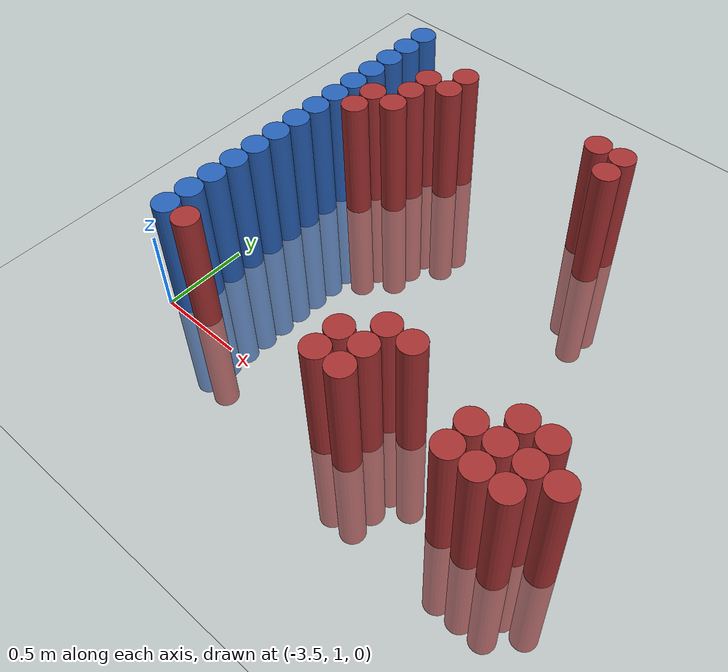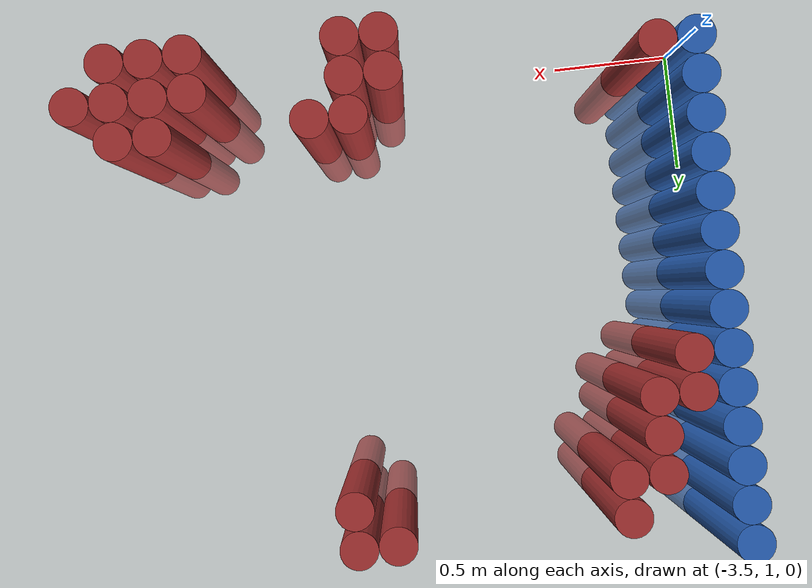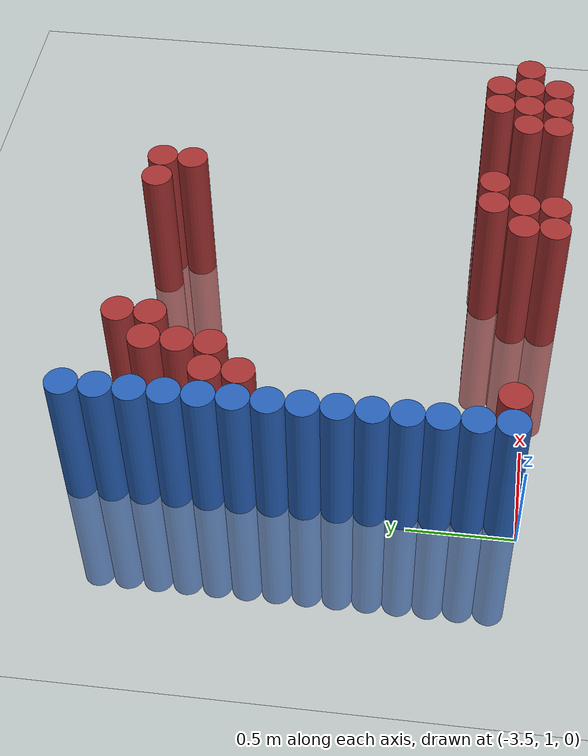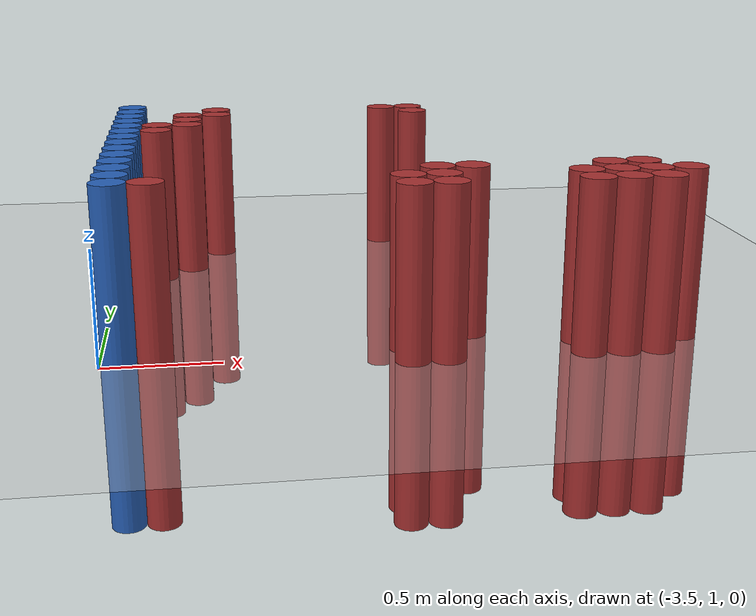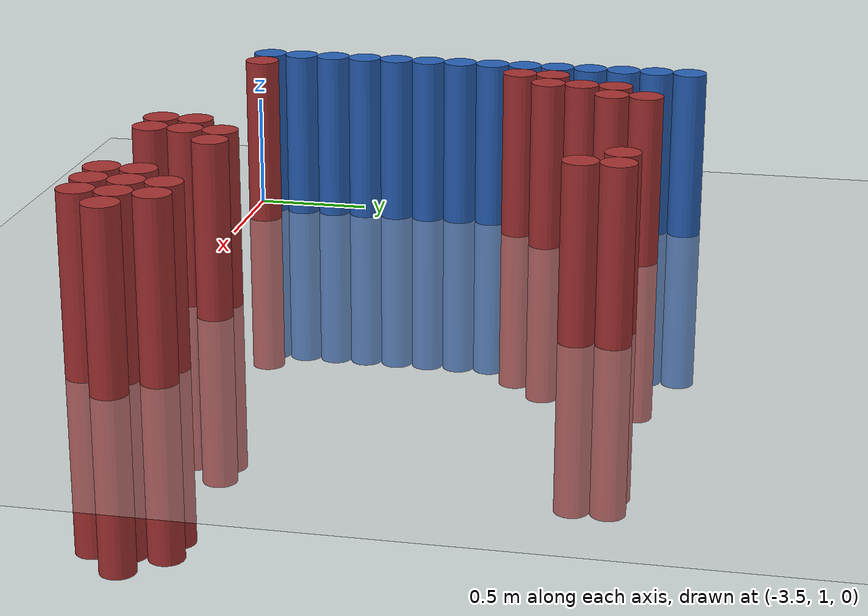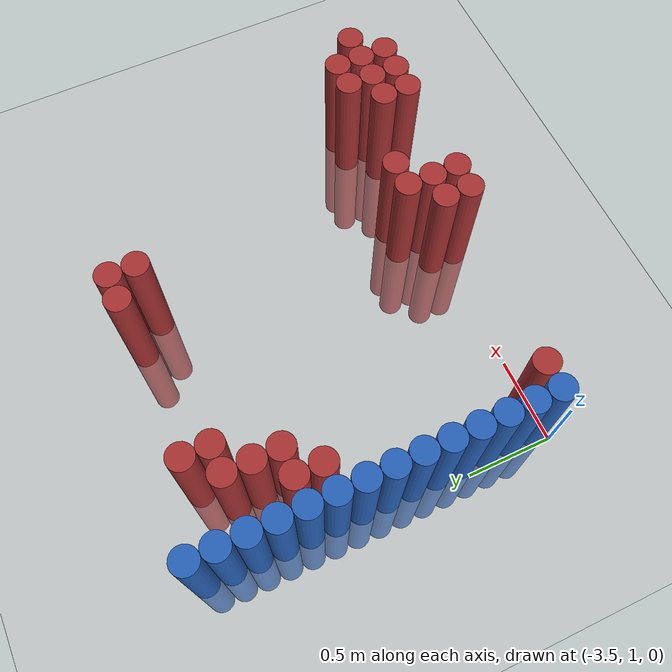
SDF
<sdf version="1.6">
 <world name="default">
  <model name="ground_plane">
   <static>1</static>
   <link name="link">
    <collision name="collision">
     <geometry><plane><normal>0 0 1</normal><size>100 100</size></plane></geometry>
     <surface><friction><ode><mu>100</mu><mu2>50</mu2></ode></friction></surface>
    </collision>
    <visual name="visual">
     <cast_shadows>0</cast_shadows>
     <geometry><plane><normal>0 0 1</normal><size>100 100</size></plane></geometry>
     <material>
      <script><uri>file://media/materials/scripts/gazebo.material</uri><name>Gazebo/Grey</name></script>
     </material>
    </visual>
   </link>
  </model>
  <model name="unit_cylinder_129">
   <static>1</static>
   <pose>-3.425000 1.075000 0.000000 0.000000 0.000000 0.000000</pose>
   <link name="link">
    <inertial>
     <mass>1</mass>
     <inertia><ixx>0.145833</ixx><ixy>0</ixy><ixz>0</ixz><iyy>0.145833</iyy><iyz>0</iyz><izz>0.125</izz></inertia>
    </inertial>
    <collision name="collision">
     <geometry><cylinder><radius>0.075000</radius><length>1.5</length></cylinder></geometry>
    </collision>
    <visual name="visual">
     <geometry><cylinder><radius>0.075000</radius><length>1.5</length></cylinder></geometry>
     <material>
      <ambient>0.152000 0.379000 0.720000 1</ambient>
      <diffuse>0.152000 0.379000 0.720000 1</diffuse>
     </material>
     <material>
      <script><name>Gazebo/Grey</name><uri>file://media/materials/scripts/gazebo.material</uri></script>
     </material>
    </visual>
   </link>
  </model>
  <model name="unit_cylinder_131">
   <static>1</static>
   <pose>-3.425000 1.225000 0.000000 0.000000 0.000000 0.000000</pose>
   <link name="link">
    <inertial>
     <mass>1</mass>
     <inertia><ixx>0.145833</ixx><ixy>0</ixy><ixz>0</ixz><iyy>0.145833</iyy><iyz>0</iyz><izz>0.125</izz></inertia>
    </inertial>
    <collision name="collision">
     <geometry><cylinder><radius>0.075000</radius><length>1.5</length></cylinder></geometry>
    </collision>
    <visual name="visual">
     <geometry><cylinder><radius>0.075000</radius><length>1.5</length></cylinder></geometry>
     <material>
      <ambient>0.152000 0.379000 0.720000 1</ambient>
      <diffuse>0.152000 0.379000 0.720000 1</diffuse>
     </material>
     <material>
      <script><name>Gazebo/Grey</name><uri>file://media/materials/scripts/gazebo.material</uri></script>
     </material>
    </visual>
   </link>
  </model>
  <model name="unit_cylinder_133">
   <static>1</static>
   <pose>-3.425000 1.375000 0.000000 0.000000 0.000000 0.000000</pose>
   <link name="link">
    <inertial>
     <mass>1</mass>
     <inertia><ixx>0.145833</ixx><ixy>0</ixy><ixz>0</ixz><iyy>0.145833</iyy><iyz>0</iyz><izz>0.125</izz></inertia>
    </inertial>
    <collision name="collision">
     <geometry><cylinder><radius>0.075000</radius><length>1.5</length></cylinder></geometry>
    </collision>
    <visual name="visual">
     <geometry><cylinder><radius>0.075000</radius><length>1.5</length></cylinder></geometry>
     <material>
      <ambient>0.152000 0.379000 0.720000 1</ambient>
      <diffuse>0.152000 0.379000 0.720000 1</diffuse>
     </material>
     <material>
      <script><name>Gazebo/Grey</name><uri>file://media/materials/scripts/gazebo.material</uri></script>
     </material>
    </visual>
   </link>
  </model>
  <model name="unit_cylinder_135">
   <static>1</static>
   <pose>-3.425000 1.525000 0.000000 0.000000 0.000000 0.000000</pose>
   <link name="link">
    <inertial>
     <mass>1</mass>
     <inertia><ixx>0.145833</ixx><ixy>0</ixy><ixz>0</ixz><iyy>0.145833</iyy><iyz>0</iyz><izz>0.125</izz></inertia>
    </inertial>
    <collision name="collision">
     <geometry><cylinder><radius>0.075000</radius><length>1.5</length></cylinder></geometry>
    </collision>
    <visual name="visual">
     <geometry><cylinder><radius>0.075000</radius><length>1.5</length></cylinder></geometry>
     <material>
      <ambient>0.152000 0.379000 0.720000 1</ambient>
      <diffuse>0.152000 0.379000 0.720000 1</diffuse>
     </material>
     <material>
      <script><name>Gazebo/Grey</name><uri>file://media/materials/scripts/gazebo.material</uri></script>
     </material>
    </visual>
   </link>
  </model>
  <model name="unit_cylinder_137">
   <static>1</static>
   <pose>-3.425000 1.675000 0.000000 0.000000 0.000000 0.000000</pose>
   <link name="link">
    <inertial>
     <mass>1</mass>
     <inertia><ixx>0.145833</ixx><ixy>0</ixy><ixz>0</ixz><iyy>0.145833</iyy><iyz>0</iyz><izz>0.125</izz></inertia>
    </inertial>
    <collision name="collision">
     <geometry><cylinder><radius>0.075000</radius><length>1.5</length></cylinder></geometry>
    </collision>
    <visual name="visual">
     <geometry><cylinder><radius>0.075000</radius><length>1.5</length></cylinder></geometry>
     <material>
      <ambient>0.152000 0.379000 0.720000 1</ambient>
      <diffuse>0.152000 0.379000 0.720000 1</diffuse>
     </material>
     <material>
      <script><name>Gazebo/Grey</name><uri>file://media/materials/scripts/gazebo.material</uri></script>
     </material>
    </visual>
   </link>
  </model>
  <model name="unit_cylinder_139">
   <static>1</static>
   <pose>-3.425000 1.825000 0.000000 0.000000 0.000000 0.000000</pose>
   <link name="link">
    <inertial>
     <mass>1</mass>
     <inertia><ixx>0.145833</ixx><ixy>0</ixy><ixz>0</ixz><iyy>0.145833</iyy><iyz>0</iyz><izz>0.125</izz></inertia>
    </inertial>
    <collision name="collision">
     <geometry><cylinder><radius>0.075000</radius><length>1.5</length></cylinder></geometry>
    </collision>
    <visual name="visual">
     <geometry><cylinder><radius>0.075000</radius><length>1.5</length></cylinder></geometry>
     <material>
      <ambient>0.152000 0.379000 0.720000 1</ambient>
      <diffuse>0.152000 0.379000 0.720000 1</diffuse>
     </material>
     <material>
      <script><name>Gazebo/Grey</name><uri>file://media/materials/scripts/gazebo.material</uri></script>
     </material>
    </visual>
   </link>
  </model>
  <model name="unit_cylinder_141">
   <static>1</static>
   <pose>-3.425000 1.975000 0.000000 0.000000 0.000000 0.000000</pose>
   <link name="link">
    <inertial>
     <mass>1</mass>
     <inertia><ixx>0.145833</ixx><ixy>0</ixy><ixz>0</ixz><iyy>0.145833</iyy><iyz>0</iyz><izz>0.125</izz></inertia>
    </inertial>
    <collision name="collision">
     <geometry><cylinder><radius>0.075000</radius><length>1.5</length></cylinder></geometry>
    </collision>
    <visual name="visual">
     <geometry><cylinder><radius>0.075000</radius><length>1.5</length></cylinder></geometry>
     <material>
      <ambient>0.152000 0.379000 0.720000 1</ambient>
      <diffuse>0.152000 0.379000 0.720000 1</diffuse>
     </material>
     <material>
      <script><name>Gazebo/Grey</name><uri>file://media/materials/scripts/gazebo.material</uri></script>
     </material>
    </visual>
   </link>
  </model>
  <model name="unit_cylinder_143">
   <static>1</static>
   <pose>-3.425000 2.125000 0.000000 0.000000 0.000000 0.000000</pose>
   <link name="link">
    <inertial>
     <mass>1</mass>
     <inertia><ixx>0.145833</ixx><ixy>0</ixy><ixz>0</ixz><iyy>0.145833</iyy><iyz>0</iyz><izz>0.125</izz></inertia>
    </inertial>
    <collision name="collision">
     <geometry><cylinder><radius>0.075000</radius><length>1.5</length></cylinder></geometry>
    </collision>
    <visual name="visual">
     <geometry><cylinder><radius>0.075000</radius><length>1.5</length></cylinder></geometry>
     <material>
      <ambient>0.152000 0.379000 0.720000 1</ambient>
      <diffuse>0.152000 0.379000 0.720000 1</diffuse>
     </material>
     <material>
      <script><name>Gazebo/Grey</name><uri>file://media/materials/scripts/gazebo.material</uri></script>
     </material>
    </visual>
   </link>
  </model>
  <model name="unit_cylinder_145">
   <static>1</static>
   <pose>-3.425000 2.275000 0.000000 0.000000 0.000000 0.000000</pose>
   <link name="link">
    <inertial>
     <mass>1</mass>
     <inertia><ixx>0.145833</ixx><ixy>0</ixy><ixz>0</ixz><iyy>0.145833</iyy><iyz>0</iyz><izz>0.125</izz></inertia>
    </inertial>
    <collision name="collision">
     <geometry><cylinder><radius>0.075000</radius><length>1.5</length></cylinder></geometry>
    </collision>
    <visual name="visual">
     <geometry><cylinder><radius>0.075000</radius><length>1.5</length></cylinder></geometry>
     <material>
      <ambient>0.152000 0.379000 0.720000 1</ambient>
      <diffuse>0.152000 0.379000 0.720000 1</diffuse>
     </material>
     <material>
      <script><name>Gazebo/Grey</name><uri>file://media/materials/scripts/gazebo.material</uri></script>
     </material>
    </visual>
   </link>
  </model>
  <model name="unit_cylinder_147">
   <static>1</static>
   <pose>-3.425000 2.425000 0.000000 0.000000 0.000000 0.000000</pose>
   <link name="link">
    <inertial>
     <mass>1</mass>
     <inertia><ixx>0.145833</ixx><ixy>0</ixy><ixz>0</ixz><iyy>0.145833</iyy><iyz>0</iyz><izz>0.125</izz></inertia>
    </inertial>
    <collision name="collision">
     <geometry><cylinder><radius>0.075000</radius><length>1.5</length></cylinder></geometry>
    </collision>
    <visual name="visual">
     <geometry><cylinder><radius>0.075000</radius><length>1.5</length></cylinder></geometry>
     <material>
      <ambient>0.152000 0.379000 0.720000 1</ambient>
      <diffuse>0.152000 0.379000 0.720000 1</diffuse>
     </material>
     <material>
      <script><name>Gazebo/Grey</name><uri>file://media/materials/scripts/gazebo.material</uri></script>
     </material>
    </visual>
   </link>
  </model>
  <model name="unit_cylinder_149">
   <static>1</static>
   <pose>-3.425000 2.575000 0.000000 0.000000 0.000000 0.000000</pose>
   <link name="link">
    <inertial>
     <mass>1</mass>
     <inertia><ixx>0.145833</ixx><ixy>0</ixy><ixz>0</ixz><iyy>0.145833</iyy><iyz>0</iyz><izz>0.125</izz></inertia>
    </inertial>
    <collision name="collision">
     <geometry><cylinder><radius>0.075000</radius><length>1.5</length></cylinder></geometry>
    </collision>
    <visual name="visual">
     <geometry><cylinder><radius>0.075000</radius><length>1.5</length></cylinder></geometry>
     <material>
      <ambient>0.152000 0.379000 0.720000 1</ambient>
      <diffuse>0.152000 0.379000 0.720000 1</diffuse>
     </material>
     <material>
      <script><name>Gazebo/Grey</name><uri>file://media/materials/scripts/gazebo.material</uri></script>
     </material>
    </visual>
   </link>
  </model>
  <model name="unit_cylinder_151">
   <static>1</static>
   <pose>-3.425000 2.725000 0.000000 0.000000 0.000000 0.000000</pose>
   <link name="link">
    <inertial>
     <mass>1</mass>
     <inertia><ixx>0.145833</ixx><ixy>0</ixy><ixz>0</ixz><iyy>0.145833</iyy><iyz>0</iyz><izz>0.125</izz></inertia>
    </inertial>
    <collision name="collision">
     <geometry><cylinder><radius>0.075000</radius><length>1.5</length></cylinder></geometry>
    </collision>
    <visual name="visual">
     <geometry><cylinder><radius>0.075000</radius><length>1.5</length></cylinder></geometry>
     <material>
      <ambient>0.152000 0.379000 0.720000 1</ambient>
      <diffuse>0.152000 0.379000 0.720000 1</diffuse>
     </material>
     <material>
      <script><name>Gazebo/Grey</name><uri>file://media/materials/scripts/gazebo.material</uri></script>
     </material>
    </visual>
   </link>
  </model>
  <model name="unit_cylinder_153">
   <static>1</static>
   <pose>-3.425000 2.875000 0.000000 0.000000 0.000000 0.000000</pose>
   <link name="link">
    <inertial>
     <mass>1</mass>
     <inertia><ixx>0.145833</ixx><ixy>0</ixy><ixz>0</ixz><iyy>0.145833</iyy><iyz>0</iyz><izz>0.125</izz></inertia>
    </inertial>
    <collision name="collision">
     <geometry><cylinder><radius>0.075000</radius><length>1.5</length></cylinder></geometry>
    </collision>
    <visual name="visual">
     <geometry><cylinder><radius>0.075000</radius><length>1.5</length></cylinder></geometry>
     <material>
      <ambient>0.152000 0.379000 0.720000 1</ambient>
      <diffuse>0.152000 0.379000 0.720000 1</diffuse>
     </material>
     <material>
      <script><name>Gazebo/Grey</name><uri>file://media/materials/scripts/gazebo.material</uri></script>
     </material>
    </visual>
   </link>
  </model>
  <model name="unit_cylinder_155">
   <static>1</static>
   <pose>-3.425000 3.025000 0.000000 0.000000 0.000000 0.000000</pose>
   <link name="link">
    <inertial>
     <mass>1</mass>
     <inertia><ixx>0.145833</ixx><ixy>0</ixy><ixz>0</ixz><iyy>0.145833</iyy><iyz>0</iyz><izz>0.125</izz></inertia>
    </inertial>
    <collision name="collision">
     <geometry><cylinder><radius>0.075000</radius><length>1.5</length></cylinder></geometry>
    </collision>
    <visual name="visual">
     <geometry><cylinder><radius>0.075000</radius><length>1.5</length></cylinder></geometry>
     <material>
      <ambient>0.152000 0.379000 0.720000 1</ambient>
      <diffuse>0.152000 0.379000 0.720000 1</diffuse>
     </material>
     <material>
      <script><name>Gazebo/Grey</name><uri>file://media/materials/scripts/gazebo.material</uri></script>
     </material>
    </visual>
   </link>
  </model>
  <model name="unit_cylinder_228">
   <static>1</static>
   <pose>-3.425000 1.075000 0.000000 0.000000 0.000000 0.000000</pose>
   <link name="link">
    <inertial>
     <mass>1</mass>
     <inertia><ixx>0.145833</ixx><ixy>0</ixy><ixz>0</ixz><iyy>0.145833</iyy><iyz>0</iyz><izz>0.125</izz></inertia>
    </inertial>
    <collision name="collision">
     <geometry><cylinder><radius>0.075000</radius><length>1.5</length></cylinder></geometry>
    </collision>
    <visual name="visual">
     <geometry><cylinder><radius>0.075000</radius><length>1.5</length></cylinder></geometry>
     <material>
      <ambient>0.152000 0.379000 0.720000 1</ambient>
      <diffuse>0.152000 0.379000 0.720000 1</diffuse>
     </material>
     <material>
      <script><name>Gazebo/Grey</name><uri>file://media/materials/scripts/gazebo.material</uri></script>
     </material>
    </visual>
   </link>
  </model>
  <model name="unit_cylinder_229">
   <static>1</static>
   <pose>-3.425000 1.225000 0.000000 0.000000 0.000000 0.000000</pose>
   <link name="link">
    <inertial>
     <mass>1</mass>
     <inertia><ixx>0.145833</ixx><ixy>0</ixy><ixz>0</ixz><iyy>0.145833</iyy><iyz>0</iyz><izz>0.125</izz></inertia>
    </inertial>
    <collision name="collision">
     <geometry><cylinder><radius>0.075000</radius><length>1.5</length></cylinder></geometry>
    </collision>
    <visual name="visual">
     <geometry><cylinder><radius>0.075000</radius><length>1.5</length></cylinder></geometry>
     <material>
      <ambient>0.152000 0.379000 0.720000 1</ambient>
      <diffuse>0.152000 0.379000 0.720000 1</diffuse>
     </material>
     <material>
      <script><name>Gazebo/Grey</name><uri>file://media/materials/scripts/gazebo.material</uri></script>
     </material>
    </visual>
   </link>
  </model>
  <model name="unit_cylinder_230">
   <static>1</static>
   <pose>-3.425000 1.375000 0.000000 0.000000 0.000000 0.000000</pose>
   <link name="link">
    <inertial>
     <mass>1</mass>
     <inertia><ixx>0.145833</ixx><ixy>0</ixy><ixz>0</ixz><iyy>0.145833</iyy><iyz>0</iyz><izz>0.125</izz></inertia>
    </inertial>
    <collision name="collision">
     <geometry><cylinder><radius>0.075000</radius><length>1.5</length></cylinder></geometry>
    </collision>
    <visual name="visual">
     <geometry><cylinder><radius>0.075000</radius><length>1.5</length></cylinder></geometry>
     <material>
      <ambient>0.152000 0.379000 0.720000 1</ambient>
      <diffuse>0.152000 0.379000 0.720000 1</diffuse>
     </material>
     <material>
      <script><name>Gazebo/Grey</name><uri>file://media/materials/scripts/gazebo.material</uri></script>
     </material>
    </visual>
   </link>
  </model>
  <model name="unit_cylinder_231">
   <static>1</static>
   <pose>-3.425000 1.525000 0.000000 0.000000 0.000000 0.000000</pose>
   <link name="link">
    <inertial>
     <mass>1</mass>
     <inertia><ixx>0.145833</ixx><ixy>0</ixy><ixz>0</ixz><iyy>0.145833</iyy><iyz>0</iyz><izz>0.125</izz></inertia>
    </inertial>
    <collision name="collision">
     <geometry><cylinder><radius>0.075000</radius><length>1.5</length></cylinder></geometry>
    </collision>
    <visual name="visual">
     <geometry><cylinder><radius>0.075000</radius><length>1.5</length></cylinder></geometry>
     <material>
      <ambient>0.152000 0.379000 0.720000 1</ambient>
      <diffuse>0.152000 0.379000 0.720000 1</diffuse>
     </material>
     <material>
      <script><name>Gazebo/Grey</name><uri>file://media/materials/scripts/gazebo.material</uri></script>
     </material>
    </visual>
   </link>
  </model>
  <model name="unit_cylinder_232">
   <static>1</static>
   <pose>-3.425000 1.675000 0.000000 0.000000 0.000000 0.000000</pose>
   <link name="link">
    <inertial>
     <mass>1</mass>
     <inertia><ixx>0.145833</ixx><ixy>0</ixy><ixz>0</ixz><iyy>0.145833</iyy><iyz>0</iyz><izz>0.125</izz></inertia>
    </inertial>
    <collision name="collision">
     <geometry><cylinder><radius>0.075000</radius><length>1.5</length></cylinder></geometry>
    </collision>
    <visual name="visual">
     <geometry><cylinder><radius>0.075000</radius><length>1.5</length></cylinder></geometry>
     <material>
      <ambient>0.152000 0.379000 0.720000 1</ambient>
      <diffuse>0.152000 0.379000 0.720000 1</diffuse>
     </material>
     <material>
      <script><name>Gazebo/Grey</name><uri>file://media/materials/scripts/gazebo.material</uri></script>
     </material>
    </visual>
   </link>
  </model>
  <model name="unit_cylinder_233">
   <static>1</static>
   <pose>-3.425000 1.825000 0.000000 0.000000 0.000000 0.000000</pose>
   <link name="link">
    <inertial>
     <mass>1</mass>
     <inertia><ixx>0.145833</ixx><ixy>0</ixy><ixz>0</ixz><iyy>0.145833</iyy><iyz>0</iyz><izz>0.125</izz></inertia>
    </inertial>
    <collision name="collision">
     <geometry><cylinder><radius>0.075000</radius><length>1.5</length></cylinder></geometry>
    </collision>
    <visual name="visual">
     <geometry><cylinder><radius>0.075000</radius><length>1.5</length></cylinder></geometry>
     <material>
      <ambient>0.152000 0.379000 0.720000 1</ambient>
      <diffuse>0.152000 0.379000 0.720000 1</diffuse>
     </material>
     <material>
      <script><name>Gazebo/Grey</name><uri>file://media/materials/scripts/gazebo.material</uri></script>
     </material>
    </visual>
   </link>
  </model>
  <model name="unit_cylinder_234">
   <static>1</static>
   <pose>-3.425000 1.975000 0.000000 0.000000 0.000000 0.000000</pose>
   <link name="link">
    <inertial>
     <mass>1</mass>
     <inertia><ixx>0.145833</ixx><ixy>0</ixy><ixz>0</ixz><iyy>0.145833</iyy><iyz>0</iyz><izz>0.125</izz></inertia>
    </inertial>
    <collision name="collision">
     <geometry><cylinder><radius>0.075000</radius><length>1.5</length></cylinder></geometry>
    </collision>
    <visual name="visual">
     <geometry><cylinder><radius>0.075000</radius><length>1.5</length></cylinder></geometry>
     <material>
      <ambient>0.152000 0.379000 0.720000 1</ambient>
      <diffuse>0.152000 0.379000 0.720000 1</diffuse>
     </material>
     <material>
      <script><name>Gazebo/Grey</name><uri>file://media/materials/scripts/gazebo.material</uri></script>
     </material>
    </visual>
   </link>
  </model>
  <model name="unit_cylinder_235">
   <static>1</static>
   <pose>-3.425000 2.125000 0.000000 0.000000 0.000000 0.000000</pose>
   <link name="link">
    <inertial>
     <mass>1</mass>
     <inertia><ixx>0.145833</ixx><ixy>0</ixy><ixz>0</ixz><iyy>0.145833</iyy><iyz>0</iyz><izz>0.125</izz></inertia>
    </inertial>
    <collision name="collision">
     <geometry><cylinder><radius>0.075000</radius><length>1.5</length></cylinder></geometry>
    </collision>
    <visual name="visual">
     <geometry><cylinder><radius>0.075000</radius><length>1.5</length></cylinder></geometry>
     <material>
      <ambient>0.152000 0.379000 0.720000 1</ambient>
      <diffuse>0.152000 0.379000 0.720000 1</diffuse>
     </material>
     <material>
      <script><name>Gazebo/Grey</name><uri>file://media/materials/scripts/gazebo.material</uri></script>
     </material>
    </visual>
   </link>
  </model>
  <model name="unit_cylinder_236">
   <static>1</static>
   <pose>-3.425000 2.275000 0.000000 0.000000 0.000000 0.000000</pose>
   <link name="link">
    <inertial>
     <mass>1</mass>
     <inertia><ixx>0.145833</ixx><ixy>0</ixy><ixz>0</ixz><iyy>0.145833</iyy><iyz>0</iyz><izz>0.125</izz></inertia>
    </inertial>
    <collision name="collision">
     <geometry><cylinder><radius>0.075000</radius><length>1.5</length></cylinder></geometry>
    </collision>
    <visual name="visual">
     <geometry><cylinder><radius>0.075000</radius><length>1.5</length></cylinder></geometry>
     <material>
      <ambient>0.152000 0.379000 0.720000 1</ambient>
      <diffuse>0.152000 0.379000 0.720000 1</diffuse>
     </material>
     <material>
      <script><name>Gazebo/Grey</name><uri>file://media/materials/scripts/gazebo.material</uri></script>
     </material>
    </visual>
   </link>
  </model>
  <model name="unit_cylinder_237">
   <static>1</static>
   <pose>-3.425000 2.425000 0.000000 0.000000 0.000000 0.000000</pose>
   <link name="link">
    <inertial>
     <mass>1</mass>
     <inertia><ixx>0.145833</ixx><ixy>0</ixy><ixz>0</ixz><iyy>0.145833</iyy><iyz>0</iyz><izz>0.125</izz></inertia>
    </inertial>
    <collision name="collision">
     <geometry><cylinder><radius>0.075000</radius><length>1.5</length></cylinder></geometry>
    </collision>
    <visual name="visual">
     <geometry><cylinder><radius>0.075000</radius><length>1.5</length></cylinder></geometry>
     <material>
      <ambient>0.152000 0.379000 0.720000 1</ambient>
      <diffuse>0.152000 0.379000 0.720000 1</diffuse>
     </material>
     <material>
      <script><name>Gazebo/Grey</name><uri>file://media/materials/scripts/gazebo.material</uri></script>
     </material>
    </visual>
   </link>
  </model>
  <model name="unit_cylinder_238">
   <static>1</static>
   <pose>-3.425000 2.575000 0.000000 0.000000 0.000000 0.000000</pose>
   <link name="link">
    <inertial>
     <mass>1</mass>
     <inertia><ixx>0.145833</ixx><ixy>0</ixy><ixz>0</ixz><iyy>0.145833</iyy><iyz>0</iyz><izz>0.125</izz></inertia>
    </inertial>
    <collision name="collision">
     <geometry><cylinder><radius>0.075000</radius><length>1.5</length></cylinder></geometry>
    </collision>
    <visual name="visual">
     <geometry><cylinder><radius>0.075000</radius><length>1.5</length></cylinder></geometry>
     <material>
      <ambient>0.152000 0.379000 0.720000 1</ambient>
      <diffuse>0.152000 0.379000 0.720000 1</diffuse>
     </material>
     <material>
      <script><name>Gazebo/Grey</name><uri>file://media/materials/scripts/gazebo.material</uri></script>
     </material>
    </visual>
   </link>
  </model>
  <model name="unit_cylinder_239">
   <static>1</static>
   <pose>-3.425000 2.725000 0.000000 0.000000 0.000000 0.000000</pose>
   <link name="link">
    <inertial>
     <mass>1</mass>
     <inertia><ixx>0.145833</ixx><ixy>0</ixy><ixz>0</ixz><iyy>0.145833</iyy><iyz>0</iyz><izz>0.125</izz></inertia>
    </inertial>
    <collision name="collision">
     <geometry><cylinder><radius>0.075000</radius><length>1.5</length></cylinder></geometry>
    </collision>
    <visual name="visual">
     <geometry><cylinder><radius>0.075000</radius><length>1.5</length></cylinder></geometry>
     <material>
      <ambient>0.152000 0.379000 0.720000 1</ambient>
      <diffuse>0.152000 0.379000 0.720000 1</diffuse>
     </material>
     <material>
      <script><name>Gazebo/Grey</name><uri>file://media/materials/scripts/gazebo.material</uri></script>
     </material>
    </visual>
   </link>
  </model>
  <model name="unit_cylinder_240">
   <static>1</static>
   <pose>-3.425000 2.875000 0.000000 0.000000 0.000000 0.000000</pose>
   <link name="link">
    <inertial>
     <mass>1</mass>
     <inertia><ixx>0.145833</ixx><ixy>0</ixy><ixz>0</ixz><iyy>0.145833</iyy><iyz>0</iyz><izz>0.125</izz></inertia>
    </inertial>
    <collision name="collision">
     <geometry><cylinder><radius>0.075000</radius><length>1.5</length></cylinder></geometry>
    </collision>
    <visual name="visual">
     <geometry><cylinder><radius>0.075000</radius><length>1.5</length></cylinder></geometry>
     <material>
      <ambient>0.152000 0.379000 0.720000 1</ambient>
      <diffuse>0.152000 0.379000 0.720000 1</diffuse>
     </material>
     <material>
      <script><name>Gazebo/Grey</name><uri>file://media/materials/scripts/gazebo.material</uri></script>
     </material>
    </visual>
   </link>
  </model>
  <model name="unit_cylinder_265">
   <static>1</static>
   <pose>-3.275000 1.075000 0.000000 0.000000 0.000000 0.000000</pose>
   <link name="link">
    <inertial>
     <mass>1</mass>
     <inertia><ixx>0.145833</ixx><ixy>0</ixy><ixz>0</ixz><iyy>0.145833</iyy><iyz>0</iyz><izz>0.125</izz></inertia>
    </inertial>
    <collision name="collision">
     <geometry><cylinder><radius>0.075000</radius><length>1.5</length></cylinder></geometry>
    </collision>
    <visual name="visual">
     <geometry><cylinder><radius>0.075000</radius><length>1.5</length></cylinder></geometry>
     <material>
      <ambient>0.648000 0.192000 0.192000 1</ambient>
      <diffuse>0.648000 0.192000 0.192000 1</diffuse>
     </material>
     <material>
      <script><name>Gazebo/Grey</name><uri>file://media/materials/scripts/gazebo.material</uri></script>
     </material>
    </visual>
   </link>
  </model>
  <model name="unit_cylinder_266">
   <static>1</static>
   <pose>-3.275000 2.275000 0.000000 0.000000 0.000000 0.000000</pose>
   <link name="link">
    <inertial>
     <mass>1</mass>
     <inertia><ixx>0.145833</ixx><ixy>0</ixy><ixz>0</ixz><iyy>0.145833</iyy><iyz>0</iyz><izz>0.125</izz></inertia>
    </inertial>
    <collision name="collision">
     <geometry><cylinder><radius>0.075000</radius><length>1.5</length></cylinder></geometry>
    </collision>
    <visual name="visual">
     <geometry><cylinder><radius>0.075000</radius><length>1.5</length></cylinder></geometry>
     <material>
      <ambient>0.648000 0.192000 0.192000 1</ambient>
      <diffuse>0.648000 0.192000 0.192000 1</diffuse>
     </material>
     <material>
      <script><name>Gazebo/Grey</name><uri>file://media/materials/scripts/gazebo.material</uri></script>
     </material>
    </visual>
   </link>
  </model>
  <model name="unit_cylinder_267">
   <static>1</static>
   <pose>-3.275000 2.425000 0.000000 0.000000 0.000000 0.000000</pose>
   <link name="link">
    <inertial>
     <mass>1</mass>
     <inertia><ixx>0.145833</ixx><ixy>0</ixy><ixz>0</ixz><iyy>0.145833</iyy><iyz>0</iyz><izz>0.125</izz></inertia>
    </inertial>
    <collision name="collision">
     <geometry><cylinder><radius>0.075000</radius><length>1.5</length></cylinder></geometry>
    </collision>
    <visual name="visual">
     <geometry><cylinder><radius>0.075000</radius><length>1.5</length></cylinder></geometry>
     <material>
      <ambient>0.648000 0.192000 0.192000 1</ambient>
      <diffuse>0.648000 0.192000 0.192000 1</diffuse>
     </material>
     <material>
      <script><name>Gazebo/Grey</name><uri>file://media/materials/scripts/gazebo.material</uri></script>
     </material>
    </visual>
   </link>
  </model>
  <model name="unit_cylinder_278">
   <static>1</static>
   <pose>-3.125000 2.425000 0.000000 0.000000 0.000000 0.000000</pose>
   <link name="link">
    <inertial>
     <mass>1</mass>
     <inertia><ixx>0.145833</ixx><ixy>0</ixy><ixz>0</ixz><iyy>0.145833</iyy><iyz>0</iyz><izz>0.125</izz></inertia>
    </inertial>
    <collision name="collision">
     <geometry><cylinder><radius>0.075000</radius><length>1.5</length></cylinder></geometry>
    </collision>
    <visual name="visual">
     <geometry><cylinder><radius>0.075000</radius><length>1.5</length></cylinder></geometry>
     <material>
      <ambient>0.648000 0.192000 0.192000 1</ambient>
      <diffuse>0.648000 0.192000 0.192000 1</diffuse>
     </material>
     <material>
      <script><name>Gazebo/Grey</name><uri>file://media/materials/scripts/gazebo.material</uri></script>
     </material>
    </visual>
   </link>
  </model>
  <model name="unit_cylinder_279">
   <static>1</static>
   <pose>-3.125000 2.575000 0.000000 0.000000 0.000000 0.000000</pose>
   <link name="link">
    <inertial>
     <mass>1</mass>
     <inertia><ixx>0.145833</ixx><ixy>0</ixy><ixz>0</ixz><iyy>0.145833</iyy><iyz>0</iyz><izz>0.125</izz></inertia>
    </inertial>
    <collision name="collision">
     <geometry><cylinder><radius>0.075000</radius><length>1.5</length></cylinder></geometry>
    </collision>
    <visual name="visual">
     <geometry><cylinder><radius>0.075000</radius><length>1.5</length></cylinder></geometry>
     <material>
      <ambient>0.648000 0.192000 0.192000 1</ambient>
      <diffuse>0.648000 0.192000 0.192000 1</diffuse>
     </material>
     <material>
      <script><name>Gazebo/Grey</name><uri>file://media/materials/scripts/gazebo.material</uri></script>
     </material>
    </visual>
   </link>
  </model>
  <model name="unit_cylinder_280">
   <static>1</static>
   <pose>-3.125000 2.725000 0.000000 0.000000 0.000000 0.000000</pose>
   <link name="link">
    <inertial>
     <mass>1</mass>
     <inertia><ixx>0.145833</ixx><ixy>0</ixy><ixz>0</ixz><iyy>0.145833</iyy><iyz>0</iyz><izz>0.125</izz></inertia>
    </inertial>
    <collision name="collision">
     <geometry><cylinder><radius>0.075000</radius><length>1.5</length></cylinder></geometry>
    </collision>
    <visual name="visual">
     <geometry><cylinder><radius>0.075000</radius><length>1.5</length></cylinder></geometry>
     <material>
      <ambient>0.648000 0.192000 0.192000 1</ambient>
      <diffuse>0.648000 0.192000 0.192000 1</diffuse>
     </material>
     <material>
      <script><name>Gazebo/Grey</name><uri>file://media/materials/scripts/gazebo.material</uri></script>
     </material>
    </visual>
   </link>
  </model>
  <model name="unit_cylinder_285">
   <static>1</static>
   <pose>-2.975000 2.725000 0.000000 0.000000 0.000000 0.000000</pose>
   <link name="link">
    <inertial>
     <mass>1</mass>
     <inertia><ixx>0.145833</ixx><ixy>0</ixy><ixz>0</ixz><iyy>0.145833</iyy><iyz>0</iyz><izz>0.125</izz></inertia>
    </inertial>
    <collision name="collision">
     <geometry><cylinder><radius>0.075000</radius><length>1.5</length></cylinder></geometry>
    </collision>
    <visual name="visual">
     <geometry><cylinder><radius>0.075000</radius><length>1.5</length></cylinder></geometry>
     <material>
      <ambient>0.648000 0.192000 0.192000 1</ambient>
      <diffuse>0.648000 0.192000 0.192000 1</diffuse>
     </material>
     <material>
      <script><name>Gazebo/Grey</name><uri>file://media/materials/scripts/gazebo.material</uri></script>
     </material>
    </visual>
   </link>
  </model>
  <model name="unit_cylinder_286">
   <static>1</static>
   <pose>-2.975000 2.875000 0.000000 0.000000 0.000000 0.000000</pose>
   <link name="link">
    <inertial>
     <mass>1</mass>
     <inertia><ixx>0.145833</ixx><ixy>0</ixy><ixz>0</ixz><iyy>0.145833</iyy><iyz>0</iyz><izz>0.125</izz></inertia>
    </inertial>
    <collision name="collision">
     <geometry><cylinder><radius>0.075000</radius><length>1.5</length></cylinder></geometry>
    </collision>
    <visual name="visual">
     <geometry><cylinder><radius>0.075000</radius><length>1.5</length></cylinder></geometry>
     <material>
      <ambient>0.648000 0.192000 0.192000 1</ambient>
      <diffuse>0.648000 0.192000 0.192000 1</diffuse>
     </material>
     <material>
      <script><name>Gazebo/Grey</name><uri>file://media/materials/scripts/gazebo.material</uri></script>
     </material>
    </visual>
   </link>
  </model>
  <model name="unit_cylinder_324">
   <static>1</static>
   <pose>-2.225000 0.925000 0.000000 0.000000 0.000000 0.000000</pose>
   <link name="link">
    <inertial>
     <mass>1</mass>
     <inertia><ixx>0.145833</ixx><ixy>0</ixy><ixz>0</ixz><iyy>0.145833</iyy><iyz>0</iyz><izz>0.125</izz></inertia>
    </inertial>
    <collision name="collision">
     <geometry><cylinder><radius>0.075000</radius><length>1.5</length></cylinder></geometry>
    </collision>
    <visual name="visual">
     <geometry><cylinder><radius>0.075000</radius><length>1.5</length></cylinder></geometry>
     <material>
      <ambient>0.648000 0.192000 0.192000 1</ambient>
      <diffuse>0.648000 0.192000 0.192000 1</diffuse>
     </material>
     <material>
      <script><name>Gazebo/Grey</name><uri>file://media/materials/scripts/gazebo.material</uri></script>
     </material>
    </visual>
   </link>
  </model>
  <model name="unit_cylinder_325">
   <static>1</static>
   <pose>-2.225000 1.075000 0.000000 0.000000 0.000000 0.000000</pose>
   <link name="link">
    <inertial>
     <mass>1</mass>
     <inertia><ixx>0.145833</ixx><ixy>0</ixy><ixz>0</ixz><iyy>0.145833</iyy><iyz>0</iyz><izz>0.125</izz></inertia>
    </inertial>
    <collision name="collision">
     <geometry><cylinder><radius>0.075000</radius><length>1.5</length></cylinder></geometry>
    </collision>
    <visual name="visual">
     <geometry><cylinder><radius>0.075000</radius><length>1.5</length></cylinder></geometry>
     <material>
      <ambient>0.648000 0.192000 0.192000 1</ambient>
      <diffuse>0.648000 0.192000 0.192000 1</diffuse>
     </material>
     <material>
      <script><name>Gazebo/Grey</name><uri>file://media/materials/scripts/gazebo.material</uri></script>
     </material>
    </visual>
   </link>
  </model>
  <model name="unit_cylinder_336">
   <static>1</static>
   <pose>-2.075000 0.925000 0.000000 0.000000 0.000000 0.000000</pose>
   <link name="link">
    <inertial>
     <mass>1</mass>
     <inertia><ixx>0.145833</ixx><ixy>0</ixy><ixz>0</ixz><iyy>0.145833</iyy><iyz>0</iyz><izz>0.125</izz></inertia>
    </inertial>
    <collision name="collision">
     <geometry><cylinder><radius>0.075000</radius><length>1.5</length></cylinder></geometry>
    </collision>
    <visual name="visual">
     <geometry><cylinder><radius>0.075000</radius><length>1.5</length></cylinder></geometry>
     <material>
      <ambient>0.648000 0.192000 0.192000 1</ambient>
      <diffuse>0.648000 0.192000 0.192000 1</diffuse>
     </material>
     <material>
      <script><name>Gazebo/Grey</name><uri>file://media/materials/scripts/gazebo.material</uri></script>
     </material>
    </visual>
   </link>
  </model>
  <model name="unit_cylinder_337">
   <static>1</static>
   <pose>-2.075000 1.075000 0.000000 0.000000 0.000000 0.000000</pose>
   <link name="link">
    <inertial>
     <mass>1</mass>
     <inertia><ixx>0.145833</ixx><ixy>0</ixy><ixz>0</ixz><iyy>0.145833</iyy><iyz>0</iyz><izz>0.125</izz></inertia>
    </inertial>
    <collision name="collision">
     <geometry><cylinder><radius>0.075000</radius><length>1.5</length></cylinder></geometry>
    </collision>
    <visual name="visual">
     <geometry><cylinder><radius>0.075000</radius><length>1.5</length></cylinder></geometry>
     <material>
      <ambient>0.648000 0.192000 0.192000 1</ambient>
      <diffuse>0.648000 0.192000 0.192000 1</diffuse>
     </material>
     <material>
      <script><name>Gazebo/Grey</name><uri>file://media/materials/scripts/gazebo.material</uri></script>
     </material>
    </visual>
   </link>
  </model>
  <model name="unit_cylinder_338">
   <static>1</static>
   <pose>-2.075000 1.225000 0.000000 0.000000 0.000000 0.000000</pose>
   <link name="link">
    <inertial>
     <mass>1</mass>
     <inertia><ixx>0.145833</ixx><ixy>0</ixy><ixz>0</ixz><iyy>0.145833</iyy><iyz>0</iyz><izz>0.125</izz></inertia>
    </inertial>
    <collision name="collision">
     <geometry><cylinder><radius>0.075000</radius><length>1.5</length></cylinder></geometry>
    </collision>
    <visual name="visual">
     <geometry><cylinder><radius>0.075000</radius><length>1.5</length></cylinder></geometry>
     <material>
      <ambient>0.648000 0.192000 0.192000 1</ambient>
      <diffuse>0.648000 0.192000 0.192000 1</diffuse>
     </material>
     <material>
      <script><name>Gazebo/Grey</name><uri>file://media/materials/scripts/gazebo.material</uri></script>
     </material>
    </visual>
   </link>
  </model>
  <model name="unit_cylinder_339">
   <static>1</static>
   <pose>-2.075000 2.875000 0.000000 0.000000 0.000000 0.000000</pose>
   <link name="link">
    <inertial>
     <mass>1</mass>
     <inertia><ixx>0.145833</ixx><ixy>0</ixy><ixz>0</ixz><iyy>0.145833</iyy><iyz>0</iyz><izz>0.125</izz></inertia>
    </inertial>
    <collision name="collision">
     <geometry><cylinder><radius>0.075000</radius><length>1.5</length></cylinder></geometry>
    </collision>
    <visual name="visual">
     <geometry><cylinder><radius>0.075000</radius><length>1.5</length></cylinder></geometry>
     <material>
      <ambient>0.648000 0.192000 0.192000 1</ambient>
      <diffuse>0.648000 0.192000 0.192000 1</diffuse>
     </material>
     <material>
      <script><name>Gazebo/Grey</name><uri>file://media/materials/scripts/gazebo.material</uri></script>
     </material>
    </visual>
   </link>
  </model>
  <model name="unit_cylinder_348">
   <static>1</static>
   <pose>-1.925000 1.225000 0.000000 0.000000 0.000000 0.000000</pose>
   <link name="link">
    <inertial>
     <mass>1</mass>
     <inertia><ixx>0.145833</ixx><ixy>0</ixy><ixz>0</ixz><iyy>0.145833</iyy><iyz>0</iyz><izz>0.125</izz></inertia>
    </inertial>
    <collision name="collision">
     <geometry><cylinder><radius>0.075000</radius><length>1.5</length></cylinder></geometry>
    </collision>
    <visual name="visual">
     <geometry><cylinder><radius>0.075000</radius><length>1.5</length></cylinder></geometry>
     <material>
      <ambient>0.648000 0.192000 0.192000 1</ambient>
      <diffuse>0.648000 0.192000 0.192000 1</diffuse>
     </material>
     <material>
      <script><name>Gazebo/Grey</name><uri>file://media/materials/scripts/gazebo.material</uri></script>
     </material>
    </visual>
   </link>
  </model>
  <model name="unit_cylinder_349">
   <static>1</static>
   <pose>-1.925000 2.725000 0.000000 0.000000 0.000000 0.000000</pose>
   <link name="link">
    <inertial>
     <mass>1</mass>
     <inertia><ixx>0.145833</ixx><ixy>0</ixy><ixz>0</ixz><iyy>0.145833</iyy><iyz>0</iyz><izz>0.125</izz></inertia>
    </inertial>
    <collision name="collision">
     <geometry><cylinder><radius>0.075000</radius><length>1.5</length></cylinder></geometry>
    </collision>
    <visual name="visual">
     <geometry><cylinder><radius>0.075000</radius><length>1.5</length></cylinder></geometry>
     <material>
      <ambient>0.648000 0.192000 0.192000 1</ambient>
      <diffuse>0.648000 0.192000 0.192000 1</diffuse>
     </material>
     <material>
      <script><name>Gazebo/Grey</name><uri>file://media/materials/scripts/gazebo.material</uri></script>
     </material>
    </visual>
   </link>
  </model>
  <model name="unit_cylinder_350">
   <static>1</static>
   <pose>-1.925000 2.875000 0.000000 0.000000 0.000000 0.000000</pose>
   <link name="link">
    <inertial>
     <mass>1</mass>
     <inertia><ixx>0.145833</ixx><ixy>0</ixy><ixz>0</ixz><iyy>0.145833</iyy><iyz>0</iyz><izz>0.125</izz></inertia>
    </inertial>
    <collision name="collision">
     <geometry><cylinder><radius>0.075000</radius><length>1.5</length></cylinder></geometry>
    </collision>
    <visual name="visual">
     <geometry><cylinder><radius>0.075000</radius><length>1.5</length></cylinder></geometry>
     <material>
      <ambient>0.648000 0.192000 0.192000 1</ambient>
      <diffuse>0.648000 0.192000 0.192000 1</diffuse>
     </material>
     <material>
      <script><name>Gazebo/Grey</name><uri>file://media/materials/scripts/gazebo.material</uri></script>
     </material>
    </visual>
   </link>
  </model>
  <model name="unit_cylinder_369">
   <static>1</static>
   <pose>-1.475000 0.925000 0.000000 0.000000 0.000000 0.000000</pose>
   <link name="link">
    <inertial>
     <mass>1</mass>
     <inertia><ixx>0.145833</ixx><ixy>0</ixy><ixz>0</ixz><iyy>0.145833</iyy><iyz>0</iyz><izz>0.125</izz></inertia>
    </inertial>
    <collision name="collision">
     <geometry><cylinder><radius>0.075000</radius><length>1.5</length></cylinder></geometry>
    </collision>
    <visual name="visual">
     <geometry><cylinder><radius>0.075000</radius><length>1.5</length></cylinder></geometry>
     <material>
      <ambient>0.648000 0.192000 0.192000 1</ambient>
      <diffuse>0.648000 0.192000 0.192000 1</diffuse>
     </material>
     <material>
      <script><name>Gazebo/Grey</name><uri>file://media/materials/scripts/gazebo.material</uri></script>
     </material>
    </visual>
   </link>
  </model>
  <model name="unit_cylinder_370">
   <static>1</static>
   <pose>-1.475000 1.075000 0.000000 0.000000 0.000000 0.000000</pose>
   <link name="link">
    <inertial>
     <mass>1</mass>
     <inertia><ixx>0.145833</ixx><ixy>0</ixy><ixz>0</ixz><iyy>0.145833</iyy><iyz>0</iyz><izz>0.125</izz></inertia>
    </inertial>
    <collision name="collision">
     <geometry><cylinder><radius>0.075000</radius><length>1.5</length></cylinder></geometry>
    </collision>
    <visual name="visual">
     <geometry><cylinder><radius>0.075000</radius><length>1.5</length></cylinder></geometry>
     <material>
      <ambient>0.648000 0.192000 0.192000 1</ambient>
      <diffuse>0.648000 0.192000 0.192000 1</diffuse>
     </material>
     <material>
      <script><name>Gazebo/Grey</name><uri>file://media/materials/scripts/gazebo.material</uri></script>
     </material>
    </visual>
   </link>
  </model>
  <model name="unit_cylinder_374">
   <static>1</static>
   <pose>-1.325000 0.925000 0.000000 0.000000 0.000000 0.000000</pose>
   <link name="link">
    <inertial>
     <mass>1</mass>
     <inertia><ixx>0.145833</ixx><ixy>0</ixy><ixz>0</ixz><iyy>0.145833</iyy><iyz>0</iyz><izz>0.125</izz></inertia>
    </inertial>
    <collision name="collision">
     <geometry><cylinder><radius>0.075000</radius><length>1.5</length></cylinder></geometry>
    </collision>
    <visual name="visual">
     <geometry><cylinder><radius>0.075000</radius><length>1.5</length></cylinder></geometry>
     <material>
      <ambient>0.648000 0.192000 0.192000 1</ambient>
      <diffuse>0.648000 0.192000 0.192000 1</diffuse>
     </material>
     <material>
      <script><name>Gazebo/Grey</name><uri>file://media/materials/scripts/gazebo.material</uri></script>
     </material>
    </visual>
   </link>
  </model>
  <model name="unit_cylinder_375">
   <static>1</static>
   <pose>-1.325000 1.075000 0.000000 0.000000 0.000000 0.000000</pose>
   <link name="link">
    <inertial>
     <mass>1</mass>
     <inertia><ixx>0.145833</ixx><ixy>0</ixy><ixz>0</ixz><iyy>0.145833</iyy><iyz>0</iyz><izz>0.125</izz></inertia>
    </inertial>
    <collision name="collision">
     <geometry><cylinder><radius>0.075000</radius><length>1.5</length></cylinder></geometry>
    </collision>
    <visual name="visual">
     <geometry><cylinder><radius>0.075000</radius><length>1.5</length></cylinder></geometry>
     <material>
      <ambient>0.648000 0.192000 0.192000 1</ambient>
      <diffuse>0.648000 0.192000 0.192000 1</diffuse>
     </material>
     <material>
      <script><name>Gazebo/Grey</name><uri>file://media/materials/scripts/gazebo.material</uri></script>
     </material>
    </visual>
   </link>
  </model>
  <model name="unit_cylinder_376">
   <static>1</static>
   <pose>-1.325000 1.225000 0.000000 0.000000 0.000000 0.000000</pose>
   <link name="link">
    <inertial>
     <mass>1</mass>
     <inertia><ixx>0.145833</ixx><ixy>0</ixy><ixz>0</ixz><iyy>0.145833</iyy><iyz>0</iyz><izz>0.125</izz></inertia>
    </inertial>
    <collision name="collision">
     <geometry><cylinder><radius>0.075000</radius><length>1.5</length></cylinder></geometry>
    </collision>
    <visual name="visual">
     <geometry><cylinder><radius>0.075000</radius><length>1.5</length></cylinder></geometry>
     <material>
      <ambient>0.648000 0.192000 0.192000 1</ambient>
      <diffuse>0.648000 0.192000 0.192000 1</diffuse>
     </material>
     <material>
      <script><name>Gazebo/Grey</name><uri>file://media/materials/scripts/gazebo.material</uri></script>
     </material>
    </visual>
   </link>
  </model>
  <model name="unit_cylinder_383">
   <static>1</static>
   <pose>-1.175000 0.925000 0.000000 0.000000 0.000000 0.000000</pose>
   <link name="link">
    <inertial>
     <mass>1</mass>
     <inertia><ixx>0.145833</ixx><ixy>0</ixy><ixz>0</ixz><iyy>0.145833</iyy><iyz>0</iyz><izz>0.125</izz></inertia>
    </inertial>
    <collision name="collision">
     <geometry><cylinder><radius>0.075000</radius><length>1.5</length></cylinder></geometry>
    </collision>
    <visual name="visual">
     <geometry><cylinder><radius>0.075000</radius><length>1.5</length></cylinder></geometry>
     <material>
      <ambient>0.648000 0.192000 0.192000 1</ambient>
      <diffuse>0.648000 0.192000 0.192000 1</diffuse>
     </material>
     <material>
      <script><name>Gazebo/Grey</name><uri>file://media/materials/scripts/gazebo.material</uri></script>
     </material>
    </visual>
   </link>
  </model>
  <model name="unit_cylinder_384">
   <static>1</static>
   <pose>-1.175000 1.075000 0.000000 0.000000 0.000000 0.000000</pose>
   <link name="link">
    <inertial>
     <mass>1</mass>
     <inertia><ixx>0.145833</ixx><ixy>0</ixy><ixz>0</ixz><iyy>0.145833</iyy><iyz>0</iyz><izz>0.125</izz></inertia>
    </inertial>
    <collision name="collision">
     <geometry><cylinder><radius>0.075000</radius><length>1.5</length></cylinder></geometry>
    </collision>
    <visual name="visual">
     <geometry><cylinder><radius>0.075000</radius><length>1.5</length></cylinder></geometry>
     <material>
      <ambient>0.648000 0.192000 0.192000 1</ambient>
      <diffuse>0.648000 0.192000 0.192000 1</diffuse>
     </material>
     <material>
      <script><name>Gazebo/Grey</name><uri>file://media/materials/scripts/gazebo.material</uri></script>
     </material>
    </visual>
   </link>
  </model>
  <model name="unit_cylinder_385">
   <static>1</static>
   <pose>-1.175000 1.225000 0.000000 0.000000 0.000000 0.000000</pose>
   <link name="link">
    <inertial>
     <mass>1</mass>
     <inertia><ixx>0.145833</ixx><ixy>0</ixy><ixz>0</ixz><iyy>0.145833</iyy><iyz>0</iyz><izz>0.125</izz></inertia>
    </inertial>
    <collision name="collision">
     <geometry><cylinder><radius>0.075000</radius><length>1.5</length></cylinder></geometry>
    </collision>
    <visual name="visual">
     <geometry><cylinder><radius>0.075000</radius><length>1.5</length></cylinder></geometry>
     <material>
      <ambient>0.648000 0.192000 0.192000 1</ambient>
      <diffuse>0.648000 0.192000 0.192000 1</diffuse>
     </material>
     <material>
      <script><name>Gazebo/Grey</name><uri>file://media/materials/scripts/gazebo.material</uri></script>
     </material>
    </visual>
   </link>
  </model>
  <model name="unit_cylinder_390">
   <static>1</static>
   <pose>-1.025000 1.075000 0.000000 0.000000 0.000000 0.000000</pose>
   <link name="link">
    <inertial>
     <mass>1</mass>
     <inertia><ixx>0.145833</ixx><ixy>0</ixy><ixz>0</ixz><iyy>0.145833</iyy><iyz>0</iyz><izz>0.125</izz></inertia>
    </inertial>
    <collision name="collision">
     <geometry><cylinder><radius>0.075000</radius><length>1.5</length></cylinder></geometry>
    </collision>
    <visual name="visual">
     <geometry><cylinder><radius>0.075000</radius><length>1.5</length></cylinder></geometry>
     <material>
      <ambient>0.648000 0.192000 0.192000 1</ambient>
      <diffuse>0.648000 0.192000 0.192000 1</diffuse>
     </material>
     <material>
      <script><name>Gazebo/Grey</name><uri>file://media/materials/scripts/gazebo.material</uri></script>
     </material>
    </visual>
   </link>
  </model>
 </world>
</sdf>
